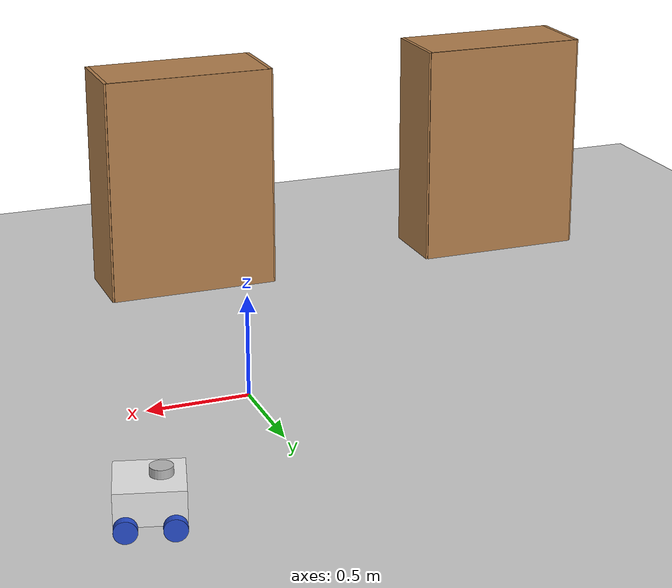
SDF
<sdf version="1.7">
 <world name="default">
  <light name="sun" type="directional">
   <pose>0 0 10 0 -0 0</pose>
   <diffuse>0.8 0.8 0.8 1</diffuse>
   <specular>0.2 0.2 0.2 1</specular>
   <attenuation>
    <range>1000</range>
    <constant>0.9</constant>
    <linear>0.01</linear>
    <quadratic>0.001</quadratic>
   </attenuation>
   <direction>-0.5 0.1 -0.9</direction>
   <spot><inner_angle>0</inner_angle><outer_angle>0</outer_angle><falloff>0</falloff></spot>
  </light>
  <model name="ground_plane">
   <static>1</static>
   <link name="link">
    <collision name="collision">
     <geometry><plane><normal>0 0 1</normal><size>100 100</size></plane></geometry>
     <surface>
      <contact><collide_bitmask>65535</collide_bitmask></contact>
      <friction><ode><mu>100</mu><mu2>50</mu2></ode></friction>
     </surface>
    </collision>
    <visual name="visual">
     <cast_shadows>0</cast_shadows>
     <geometry><plane><normal>0 0 1</normal><size>100 100</size></plane></geometry>
     <material>
      <script><uri>file://media/materials/scripts/gazebo.material</uri><name>Gazebo/Grey</name></script>
     </material>
    </visual>
   </link>
  </model>
  <gravity>0 0 -9.8</gravity>
  <magnetic_field>6e-06 2.3e-05 -4.2e-05</magnetic_field>
  <atmosphere type="adiabatic"/>
  <physics type="ode">
   <max_step_size>0.001</max_step_size>
   <real_time_factor>1</real_time_factor>
   <real_time_update_rate>1000</real_time_update_rate>
  </physics>
  <scene><ambient>0.4 0.4 0.4 1</ambient><background>0.7 0.7 0.7 1</background><shadows>1</shadows></scene>
  <audio><device>default</device></audio>
  <spherical_coordinates>
   <surface_model>EARTH_WGS84</surface_model>
   <latitude_deg>0</latitude_deg>
   <longitude_deg>0</longitude_deg>
   <elevation>0</elevation>
   <heading_deg>0</heading_deg>
  </spherical_coordinates>
  <model name="my_bot">
   <link name="base_link">
    <inertial>
     <pose>0.041667 0 0.091667 0 -0 0</pose>
     <mass>0.6</mass>
     <inertia>
      <ixx>0.00559667</ixx>
      <ixy>0</ixy>
      <ixz>0.000416667</ixz>
      <iyy>0.005805</iyy>
      <iyz>0</iyz>
      <izz>0.00783333</izz>
     </inertia>
    </inertial>
    <collision name="base_link_fixed_joint_lump__chassis_collision">
     <pose>0.05 0 0.075 0 -0 0</pose>
     <geometry><box><size>0.3 0.3 0.15</size></box></geometry>
    </collision>
    <collision name="base_link_fixed_joint_lump__lidar_collision_1">
     <pose>0 0 0.175 0 -0 0</pose>
     <geometry><cylinder><length>0.04</length><radius>0.05</radius></cylinder></geometry>
    </collision>
    <visual name="base_link_fixed_joint_lump__chassis_visual">
     <pose>0.05 0 0.075 0 -0 0</pose>
     <geometry><box><size>0.3 0.3 0.15</size></box></geometry>
     <material>
      <script><name>Gazebo/White</name><uri>file://media/materials/scripts/gazebo.material</uri></script>
     </material>
    </visual>
    <visual name="base_link_fixed_joint_lump__lidar_visual_1">
     <pose>0 0 0.175 0 -0 0</pose>
     <geometry><cylinder><length>0.04</length><radius>0.05</radius></cylinder></geometry>
    </visual>
    <sensor name="laser" type="ray">
     <visualize>1</visualize>
     <update_rate>10</update_rate>
     <ray>
      <scan>
       <horizontal>
        <resolution>1</resolution>
        <min_angle>-3.14</min_angle>
        <max_angle>3.14</max_angle>
        <samples>640</samples>
        <sample>360</sample>
       </horizontal>
       <vertical><samples>1</samples><min_angle>0</min_angle><max_angle>0</max_angle></vertical>
      </scan>
      <range><min>0.3</min><max>12</max><resolution>0.01</resolution></range>
     </ray>
     <plugin name="laser_controla" filename="libgazebo_ros_ray_sensor.so">
      <ros><argument>~/out:=scan</argument></ros>
      <output_type>sensor_msgs/LaserScan</output_type>
      <frame_name>lidar</frame_name>
     </plugin>
     <pose>0 0 0.175 0 -0 0</pose>
    </sensor>
   </link>
   <joint name="left_back_wheel_joint" type="revolute">
    <pose relative_to="base_link">-0.05 0.175 0 -1.5708 0 0</pose>
    <parent>base_link</parent>
    <child>left_back_wheel</child>
    <axis>
     <xyz>0 0 1</xyz>
     <limit><lower>-1e+16</lower><upper>1e+16</upper></limit>
     <dynamics><spring_reference>0</spring_reference><spring_stiffness>0</spring_stiffness></dynamics>
    </axis>
   </joint>
   <link name="left_back_wheel">
    <pose relative_to="left_back_wheel_joint">0 0 0 0 -0 0</pose>
    <inertial>
     <mass>0.1</mass>
     <inertia>
      <ixx>7.58333e-05</ixx>
      <ixy>0</ixy>
      <ixz>0</ixz>
      <iyy>7.58333e-05</iyy>
      <iyz>0</iyz>
      <izz>0.000125</izz>
     </inertia>
    </inertial>
    <collision name="left_back_wheel_collision">
     <geometry><cylinder><length>0.04</length><radius>0.05</radius></cylinder></geometry>
    </collision>
    <visual name="left_back_wheel_visual">
     <geometry><cylinder><length>0.04</length><radius>0.05</radius></cylinder></geometry>
     <material>
      <script><name>Gazebo/Blue</name><uri>file://media/materials/scripts/gazebo.material</uri></script>
     </material>
    </visual>
   </link>
   <joint name="left_front_wheel_joint" type="revolute">
    <pose relative_to="base_link">0.15 0.175 0 -1.5708 0 0</pose>
    <parent>base_link</parent>
    <child>left_front_wheel</child>
    <axis>
     <xyz>0 0 1</xyz>
     <limit><lower>-1e+16</lower><upper>1e+16</upper></limit>
     <dynamics><spring_reference>0</spring_reference><spring_stiffness>0</spring_stiffness></dynamics>
    </axis>
   </joint>
   <link name="left_front_wheel">
    <pose relative_to="left_front_wheel_joint">0 0 0 0 -0 0</pose>
    <inertial>
     <mass>0.1</mass>
     <inertia>
      <ixx>7.58333e-05</ixx>
      <ixy>0</ixy>
      <ixz>0</ixz>
      <iyy>7.58333e-05</iyy>
      <iyz>0</iyz>
      <izz>0.000125</izz>
     </inertia>
    </inertial>
    <collision name="left_front_wheel_collision">
     <geometry><cylinder><length>0.04</length><radius>0.05</radius></cylinder></geometry>
     <surface><friction><ode><mu>0.001</mu><mu2>0.001</mu2></ode></friction></surface>
    </collision>
    <visual name="left_front_wheel_visual">
     <geometry><cylinder><length>0.04</length><radius>0.05</radius></cylinder></geometry>
     <material>
      <script><name>Gazebo/Blue</name><uri>file://media/materials/scripts/gazebo.material</uri></script>
     </material>
    </visual>
   </link>
   <joint name="right_back_wheel_joint" type="revolute">
    <pose relative_to="base_link">-0.05 -0.175 0 1.5708 -0 0</pose>
    <parent>base_link</parent>
    <child>right_back_wheel</child>
    <axis>
     <xyz>0 0 -1</xyz>
     <limit><lower>-1e+16</lower><upper>1e+16</upper></limit>
     <dynamics><spring_reference>0</spring_reference><spring_stiffness>0</spring_stiffness></dynamics>
    </axis>
   </joint>
   <link name="right_back_wheel">
    <pose relative_to="right_back_wheel_joint">0 0 0 0 -0 0</pose>
    <inertial>
     <mass>0.1</mass>
     <inertia>
      <ixx>7.58333e-05</ixx>
      <ixy>0</ixy>
      <ixz>0</ixz>
      <iyy>7.58333e-05</iyy>
      <iyz>0</iyz>
      <izz>0.000125</izz>
     </inertia>
    </inertial>
    <collision name="right_back_wheel_collision">
     <geometry><cylinder><length>0.04</length><radius>0.05</radius></cylinder></geometry>
    </collision>
    <visual name="right_back_wheel_visual">
     <geometry><cylinder><length>0.04</length><radius>0.05</radius></cylinder></geometry>
     <material>
      <script><name>Gazebo/Blue</name><uri>file://media/materials/scripts/gazebo.material</uri></script>
     </material>
    </visual>
   </link>
   <joint name="right_front_wheel_joint" type="revolute">
    <pose relative_to="base_link">0.15 -0.175 0 1.5708 -0 0</pose>
    <parent>base_link</parent>
    <child>right_front_wheel</child>
    <axis>
     <xyz>0 0 -1</xyz>
     <limit><lower>-1e+16</lower><upper>1e+16</upper></limit>
     <dynamics><spring_reference>0</spring_reference><spring_stiffness>0</spring_stiffness></dynamics>
    </axis>
   </joint>
   <link name="right_front_wheel">
    <pose relative_to="right_front_wheel_joint">0 0 0 0 -0 0</pose>
    <inertial>
     <mass>0.1</mass>
     <inertia>
      <ixx>7.58333e-05</ixx>
      <ixy>0</ixy>
      <ixz>0</ixz>
      <iyy>7.58333e-05</iyy>
      <iyz>0</iyz>
      <izz>0.000125</izz>
     </inertia>
    </inertial>
    <collision name="right_front_wheel_collision">
     <geometry><cylinder><length>0.04</length><radius>0.05</radius></cylinder></geometry>
     <surface><friction><ode><mu>0.001</mu><mu2>0.001</mu2></ode></friction></surface>
    </collision>
    <visual name="right_front_wheel_visual">
     <geometry><cylinder><length>0.04</length><radius>0.05</radius></cylinder></geometry>
     <material>
      <script><name>Gazebo/Blue</name><uri>file://media/materials/scripts/gazebo.material</uri></script>
     </material>
    </visual>
   </link>
   <static>0</static>
   <plugin name="diff_drive" filename="libgazebo_ros_diff_drive.so">
    <left_joint>left_back_wheel_joint</left_joint>
    <right_joint>right_back_wheel_joint</right_joint>
    <wheel_separation>0.35</wheel_separation>
    <wheel_diameter>0.1</wheel_diameter>
    <max_wheel_torque>200</max_wheel_torque>
    <max_wheel_acceleration>10.0</max_wheel_acceleration>
    <odometry_frame>odom</odometry_frame>
    <robot_base_frame>base_link</robot_base_frame>
    <publish_odom>1</publish_odom>
    <publish_odom_tf>1</publish_odom_tf>
    <publish_wheel_tf>1</publish_wheel_tf>
   </plugin>
   <pose>0.71936 1.05144 0.050001 3e-06 -0 -0.264889</pose>
  </model>
  <model name="bookshelf">
   <static>1</static>
   <link name="link">
    <inertial><mass>1</mass></inertial>
    <collision name="back">
     <pose>0 0.005 0.6 0 -0 0</pose>
     <geometry><box><size>0.9 0.01 1.2</size></box></geometry>
    </collision>
    <visual name="visual1">
     <pose>0 0.005 0.6 0 -0 0</pose>
     <geometry><box><size>0.9 0.01 1.2</size></box></geometry>
     <material>
      <script><uri>file://media/materials/scripts/gazebo.material</uri><name>Gazebo/Wood</name></script>
     </material>
    </visual>
    <collision name="left_side">
     <pose>0.45 -0.195 0.6 0 -0 0</pose>
     <geometry><box><size>0.02 0.4 1.2</size></box></geometry>
    </collision>
    <visual name="visual2">
     <pose>0.45 -0.195 0.6 0 -0 0</pose>
     <geometry><box><size>0.02 0.4 1.2</size></box></geometry>
     <material>
      <script><uri>file://media/materials/scripts/gazebo.material</uri><name>Gazebo/Wood</name></script>
     </material>
    </visual>
    <collision name="right_side">
     <pose>-0.45 -0.195 0.6 0 -0 0</pose>
     <geometry><box><size>0.02 0.4 1.2</size></box></geometry>
    </collision>
    <visual name="visual3">
     <pose>-0.45 -0.195 0.6 0 -0 0</pose>
     <geometry><box><size>0.02 0.4 1.2</size></box></geometry>
     <material>
      <script><uri>file://media/materials/scripts/gazebo.material</uri><name>Gazebo/Wood</name></script>
     </material>
    </visual>
    <collision name="bottom">
     <pose>0 -0.195 0.03 0 -0 0</pose>
     <geometry><box><size>0.88 0.4 0.06</size></box></geometry>
    </collision>
    <visual name="visual4">
     <pose>0 -0.195 0.03 0 -0 0</pose>
     <geometry><box><size>0.88 0.4 0.06</size></box></geometry>
     <material>
      <script><uri>file://media/materials/scripts/gazebo.material</uri><name>Gazebo/Wood</name></script>
     </material>
    </visual>
    <collision name="top">
     <pose>0 -0.195 1.19 0 -0 0</pose>
     <geometry><box><size>0.88 0.4 0.02</size></box></geometry>
    </collision>
    <visual name="visual5">
     <pose>0 -0.195 1.19 0 -0 0</pose>
     <geometry><box><size>0.88 0.4 0.02</size></box></geometry>
     <material>
      <script><uri>file://media/materials/scripts/gazebo.material</uri><name>Gazebo/Wood</name></script>
     </material>
    </visual>
    <collision name="low_shelf">
     <pose>0 -0.195 0.43 0 -0 0</pose>
     <geometry><box><size>0.88 0.4 0.02</size></box></geometry>
    </collision>
    <visual name="visual6">
     <pose>0 -0.195 0.43 0 -0 0</pose>
     <geometry><box><size>0.88 0.4 0.02</size></box></geometry>
     <material>
      <script><uri>file://media/materials/scripts/gazebo.material</uri><name>Gazebo/Wood</name></script>
     </material>
    </visual>
    <collision name="high_shelf">
     <pose>0 -0.195 0.8 0 -0 0</pose>
     <geometry><box><size>0.88 0.4 0.02</size></box></geometry>
    </collision>
    <visual name="visual7">
     <pose>0 -0.195 0.8 0 -0 0</pose>
     <geometry><box><size>0.88 0.4 0.02</size></box></geometry>
     <material>
      <script><uri>file://media/materials/scripts/gazebo.material</uri><name>Gazebo/Wood</name></script>
     </material>
    </visual>
   </link>
   <pose>-0.16664 -1.41541 0 0 -0 0</pose>
  </model>
  <model name="bookshelf_0">
   <static>1</static>
   <link name="link">
    <inertial><mass>1</mass></inertial>
    <collision name="back">
     <pose>0 0.005 0.6 0 -0 0</pose>
     <geometry><box><size>0.9 0.01 1.2</size></box></geometry>
    </collision>
    <visual name="visual1">
     <pose>0 0.005 0.6 0 -0 0</pose>
     <geometry><box><size>0.9 0.01 1.2</size></box></geometry>
     <material>
      <script><uri>file://media/materials/scripts/gazebo.material</uri><name>Gazebo/Wood</name></script>
     </material>
    </visual>
    <collision name="left_side">
     <pose>0.45 -0.195 0.6 0 -0 0</pose>
     <geometry><box><size>0.02 0.4 1.2</size></box></geometry>
    </collision>
    <visual name="visual2">
     <pose>0.45 -0.195 0.6 0 -0 0</pose>
     <geometry><box><size>0.02 0.4 1.2</size></box></geometry>
     <material>
      <script><uri>file://media/materials/scripts/gazebo.material</uri><name>Gazebo/Wood</name></script>
     </material>
    </visual>
    <collision name="right_side">
     <pose>-0.45 -0.195 0.6 0 -0 0</pose>
     <geometry><box><size>0.02 0.4 1.2</size></box></geometry>
    </collision>
    <visual name="visual3">
     <pose>-0.45 -0.195 0.6 0 -0 0</pose>
     <geometry><box><size>0.02 0.4 1.2</size></box></geometry>
     <material>
      <script><uri>file://media/materials/scripts/gazebo.material</uri><name>Gazebo/Wood</name></script>
     </material>
    </visual>
    <collision name="bottom">
     <pose>0 -0.195 0.03 0 -0 0</pose>
     <geometry><box><size>0.88 0.4 0.06</size></box></geometry>
    </collision>
    <visual name="visual4">
     <pose>0 -0.195 0.03 0 -0 0</pose>
     <geometry><box><size>0.88 0.4 0.06</size></box></geometry>
     <material>
      <script><uri>file://media/materials/scripts/gazebo.material</uri><name>Gazebo/Wood</name></script>
     </material>
    </visual>
    <collision name="top">
     <pose>0 -0.195 1.19 0 -0 0</pose>
     <geometry><box><size>0.88 0.4 0.02</size></box></geometry>
    </collision>
    <visual name="visual5">
     <pose>0 -0.195 1.19 0 -0 0</pose>
     <geometry><box><size>0.88 0.4 0.02</size></box></geometry>
     <material>
      <script><uri>file://media/materials/scripts/gazebo.material</uri><name>Gazebo/Wood</name></script>
     </material>
    </visual>
    <collision name="low_shelf">
     <pose>0 -0.195 0.43 0 -0 0</pose>
     <geometry><box><size>0.88 0.4 0.02</size></box></geometry>
    </collision>
    <visual name="visual6">
     <pose>0 -0.195 0.43 0 -0 0</pose>
     <geometry><box><size>0.88 0.4 0.02</size></box></geometry>
     <material>
      <script><uri>file://media/materials/scripts/gazebo.material</uri><name>Gazebo/Wood</name></script>
     </material>
    </visual>
    <collision name="high_shelf">
     <pose>0 -0.195 0.8 0 -0 0</pose>
     <geometry><box><size>0.88 0.4 0.02</size></box></geometry>
    </collision>
    <visual name="visual7">
     <pose>0 -0.195 0.8 0 -0 0</pose>
     <geometry><box><size>0.88 0.4 0.02</size></box></geometry>
     <material>
      <script><uri>file://media/materials/scripts/gazebo.material</uri><name>Gazebo/Wood</name></script>
     </material>
    </visual>
   </link>
   <pose>-2.00461 -1.44374 0 0 -0 0</pose>
  </model>
 </world>
</sdf>
